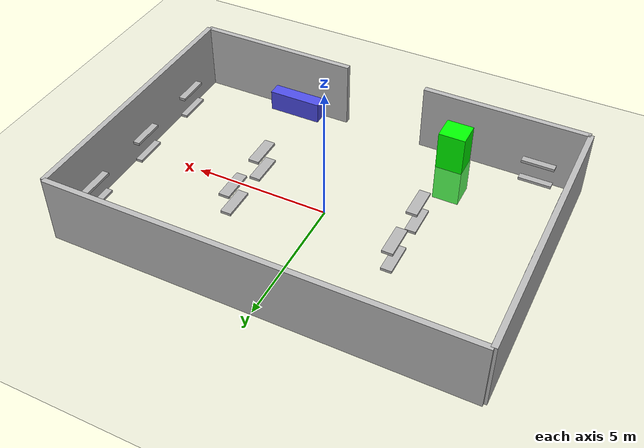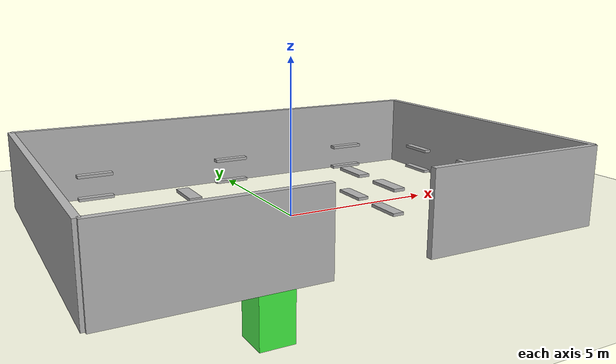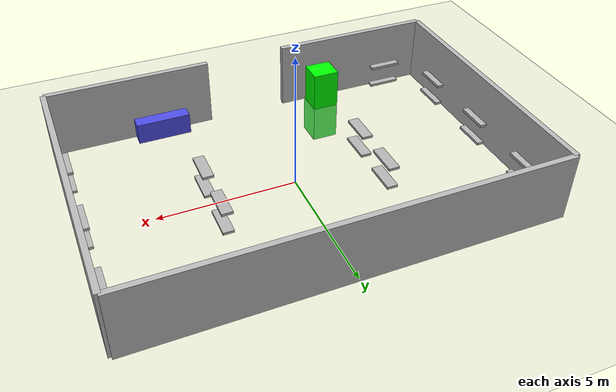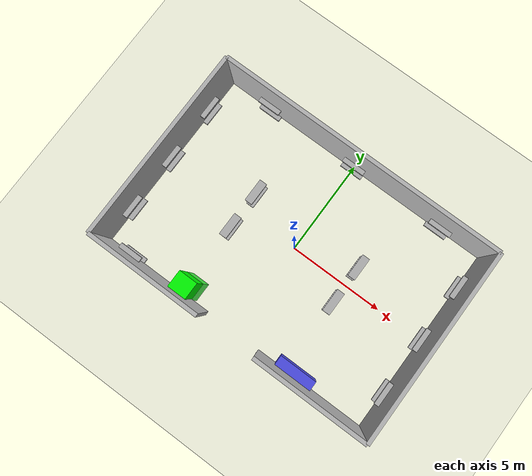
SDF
<?xml version="1.0" ?>
<sdf version='1.7'>
  <world name='my_shop_rotated'>
     <scene>
      <background>0.2 0.2 0.2 1</background>
      <grid>true</grid>
    </scene>

    <!-- Light and ground -->
    <include><uri>model://sun</uri></include>
    <include><uri>model://ground_plane</uri></include>

    <!-- Rotated green rectangle -->
    <model name='green_rectangle'>
      <static>true</static>
      <pose>-3 -4.5 0 0 0 1.57</pose>
      <link name='link'>
        <visual name='visual'>
          <geometry>
            <box><size>1 1 3</size></box>
          </geometry>
          <material>
            <ambient>0 1 0 1</ambient>
            <diffuse>0 1 0 1</diffuse>
            <specular>0.1 0.1 0.1 1</specular>
            <emissive>0 0 0 0</emissive>
          </material>
        </visual>
        <collision name='collision'>
          <geometry><box><size>1 1 3</size></box></geometry>
        </collision>
      </link>
    </model>

    <!-- Rotated perimeter walls -->
    <model name='walls'>
      <static>true</static>
      <pose>0 0 0 0 0 0</pose>
      <link name='link'>
        <collision name='wall_north'><pose>-7.5 0 1.25 0 0 1.57</pose><geometry><box><size>10 0.2 2.5</size></box></geometry></collision>
        <visual   name='visual_north'><pose>-7.5 0 1.25 0 0 1.57</pose><geometry><box><size>10 0.2 2.5</size></box></geometry></visual>
        <collision name='wall_south'><pose>7.5 0 1.25 0 0 1.57</pose><geometry><box><size>10 0.2 2.5</size></box></geometry></collision>
        <visual   name='visual_south'><pose>7.5 0 1.25 0 0 1.57</pose><geometry><box><size>10 0.2 2.5</size></box></geometry></visual>
        <collision name='wall_east'><pose>0 5 1.25 0 0 1.57</pose><geometry><box><size>0.2 15 2.5</size></box></geometry></collision>
        <visual   name='visual_east'><pose>0 5 1.25 0 0 1.57</pose><geometry><box><size>0.2 15 2.5</size></box></geometry></visual>
        <collision name='wall_west_1'><pose>-4.5 -5 1.25 0 0 1.57</pose><geometry><box><size>0.2 6 2.5</size></box></geometry></collision>
        <visual   name='visual_west_1'><pose>-4.5 -5 1.25 0 0 1.57</pose><geometry><box><size>0.2 6 2.5</size></box></geometry></visual>
        <collision name='wall_west_2'><pose>4.5 -5 1.25 0 0 1.57</pose><geometry><box><size>0.2 6 2.5</size></box></geometry></collision>
        <visual   name='visual_west_2'><pose>4.5 -5 1.25 0 0 1.57</pose><geometry><box><size>0.2 6 2.5</size></box></geometry></visual>
      </link>
    </model>

    <!-- Rotated shelves (raised by z+0.05) -->
    <include>
      <name>shelf_S1</name>
      <uri>model://shelf</uri>
      <pose>7.35 -3 0.05 0 0 1.57</pose>
      <scale>1.5 1 1</scale>
    </include>

    <include>
      <name>shelf_S2</name>
      <uri>model://shelf</uri>
      <pose>7.35 0 0.05 0 0 1.57</pose>
      <scale>1.5 1 1</scale>
    </include>

    <include>
      <name>shelf_S3</name>
      <uri>model://shelf</uri>
      <pose>7.35 3 0.05 0 0 1.57</pose>
      <scale>1.5 1 1</scale>
    </include>

    <!-- Rotated cash desk -->
    <include>
      <name>cash_desk_main</name>
      <uri>model://cash_desk</uri>
      <pose>3.5 -4.7 0 0 0 3.14</pose>
      <scale>11 11 11</scale>
    </include>

    <include>
      <name>shelf_N1</name>
      <uri>model://shelf</uri>
      <pose>-7.35 -3 0.05 0 0 1.57</pose>
      <scale>1.5 1 1</scale>
    </include>
    <include>
      <name>shelf_N2</name>
      <uri>model://shelf</uri>
      <pose>-7.35 0 0.05 0 0 1.57</pose>
      <scale>1.5 1 1</scale>
    </include>
    <include>
      <name>shelf_N3</name>
      <uri>model://shelf</uri>
      <pose>-7.35 3 0.05 0 0 4.71</pose>
      <scale>1.5 1 1</scale>
    </include>

    <include>
      <name>shelf_E1</name>
      <uri>model://shelf</uri>
      <pose>-5 4.85 0.05 0 0 3.14</pose>
      <scale>1.5 1 1</scale>
    </include>
    <include>
      <name>shelf_E2</name>
      <uri>model://shelf</uri>
      <pose>0 4.85 0.05 0 0 3.14</pose>
      <scale>1.5 1 1</scale>
    </include>
    <include>
      <name>shelf_E3</name>
      <uri>model://shelf</uri>
      <pose>5 4.85 0.05 0 0 3.14</pose>
      <scale>1.5 1 1</scale>
    </include>

    <include>
      <name>shelf_W1</name>
      <uri>model://shelf</uri>
      <pose>-6 -4.85 0.05 0 0 0</pose>
      <scale>1.5 1 1</scale>
    </include>

    <include>
      <name>shelf_Mid_sx1</name>
      <uri>model://shelf</uri>
      <pose>3 1 0.05 0 0 1.57</pose>
      <scale>3.5 1 1</scale>
    </include>

    <include>
      <name>shelf_Mid_dx1</name>
      <uri>model://shelf</uri>
      <pose>-3 1 0.05 0 0 1.57</pose>
      <scale>3.5 1 1</scale>
    </include>

    <include>
      <name>shelf_Mid_sx2</name>
      <uri>model://shelf</uri>
      <pose>3 -1 0.05 0 0 1.57</pose>
      <scale>3.5 1 1</scale>
    </include>

    <include>
      <name>shelf_Mid_dx2</name>
      <uri>model://shelf</uri>
      <pose>-3 -1 0.05 0 0 1.57</pose>
      <scale>3.5 1 1</scale>
    </include>

  </world>
</sdf>

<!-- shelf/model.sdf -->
<!-- ~/TiagoShopAssistant/src/tiago/tiago/models/shelf.sdf -->
<sdf version='1.7'>
  <model name='simple_shelf'>
    <static>true</static>
    <link name='link'>
      <!-- Base dello scaffale -->
      <visual name='visual_base'>
        <geometry><box><size>1.2 0.4 0.1</size></box></geometry>
        <material><ambient>0.5 0.5 0.5 1</ambient><diffuse>0.7 0.7 0.7 1</diffuse></material>
      </visual>
      <collision name='collision_base'>
        <geometry><box><size>1.2 0.4 0.1</size></box></geometry>
      </collision>
      <!-- Ripiano superiore -->
      <visual name='visual_top'>
        <pose>0 0 0.8 0 0 0</pose>
        <geometry><box><size>1.2 0.4 0.1</size></box></geometry>
        <material><ambient>0.5 0.5 0.5 1</ambient><diffuse>0.7 0.7 0.7 1</diffuse></material>
      </visual>
      <collision name='collision_top'>
        <pose>0 0 0.8 0 0 0</pose>
        <geometry><box><size>1.2 0.4 0.1</size></box></geometry>
      </collision>
      <!-- Gambe di supporto (invisibili per semplicità, ma con collisione) -->
      <collision name='leg1'><pose>0.55 0.15 0.45 0 0 0</pose><geometry><box><size>0.1 0.1 0.8</size></box></geometry></collision>
      <collision name='leg2'><pose>-0.55 0.15 0.45 0 0 0</pose><geometry><box><size>0.1 0.1 0.8</size></box></geometry></collision>
      <collision name='leg3'><pose>0.55 -0.15 0.45 0 0 0</pose><geometry><box><size>0.1 0.1 0.8</size></box></geometry></collision>
      <collision name='leg4'><pose>-0.55 -0.15 0.45 0 0 0</pose><geometry><box><size>0.1 0.1 0.8</size></box></geometry></collision>
    </link>
  </model>
</sdf>

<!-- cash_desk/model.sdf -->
<!-- ~/TiagoShopAssistant/src/tiago/tiago/models/cash_desk.sdf -->
<sdf version='1.7'>
  <model name='cash_desk'>
    <static>true</static>
    <link name='link'>
      <pose>0 0 0.4 0 0 0</pose>
      <visual name='visual'>
        <geometry><box><size>2.0 0.6 0.8</size></box></geometry>
        <material><ambient>0.2 0.2 0.8 1</ambient><diffuse>0.3 0.3 0.9 1</diffuse></material>
      </visual>
      <collision name='collision'>
        <geometry><box><size>2.0 0.6 0.8</size></box></geometry>
      </collision>
    </link>
  </model>
</sdf>
